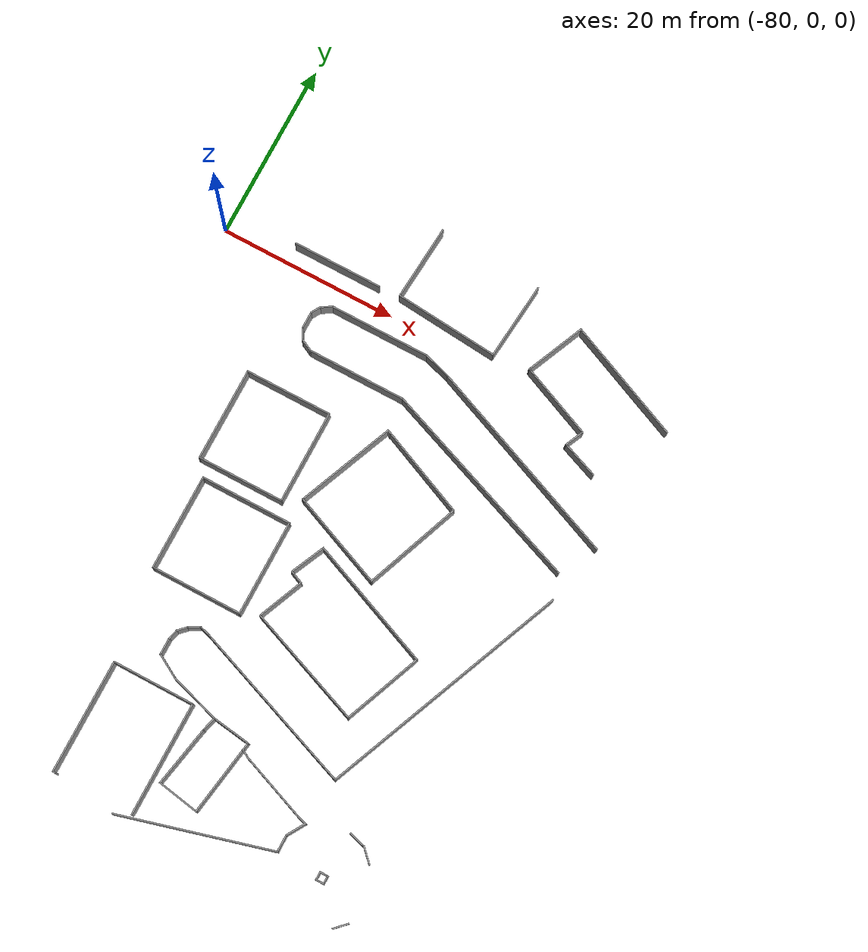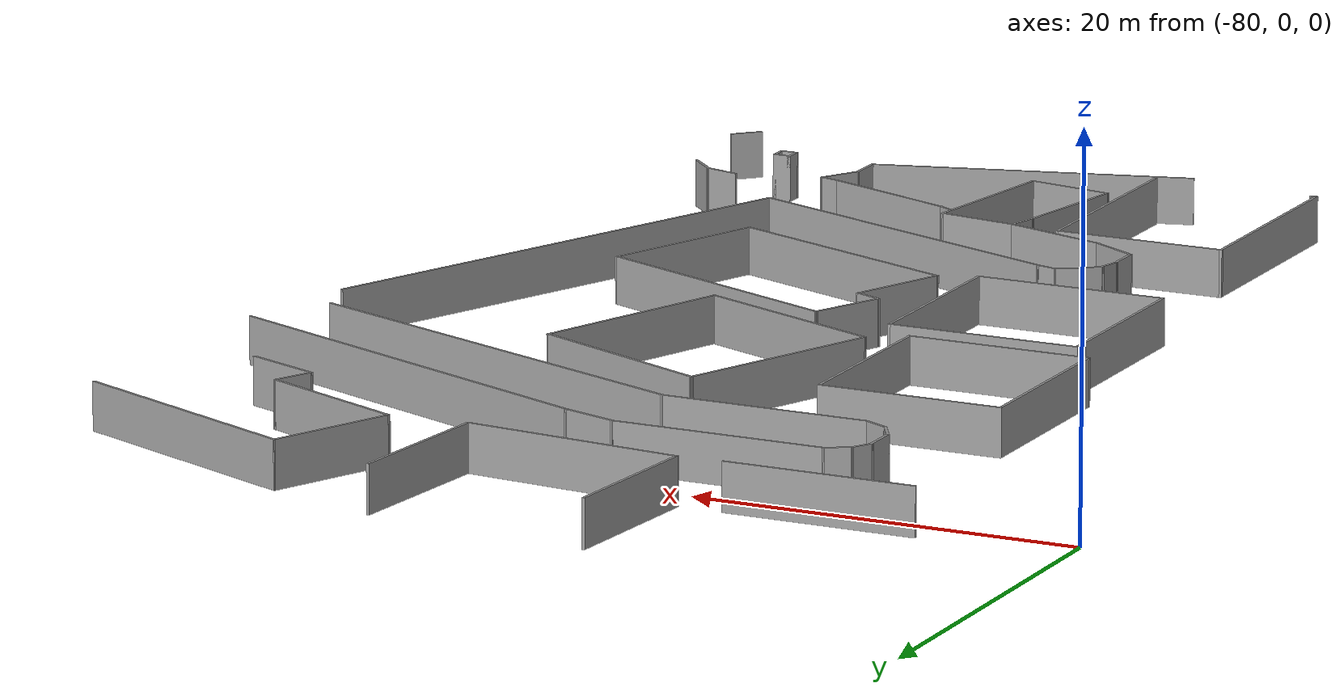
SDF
<sdf version="1.6">
 <model name="palazzo2">
  <pose>-3.81107 -3.99805 0 0 -0 0</pose>
  <link name="Wall_200">
   <collision name="Wall_200_Collision">
    <geometry><box><size>2 0.15 2.5</size></box></geometry>
    <pose>0 0 1.25 0 -0 0</pose>
   </collision>
   <visual name="Wall_200_Visual">
    <pose>0 0 1.25 0 -0 0</pose>
    <geometry><box><size>2 0.15 2.5</size></box></geometry>
    <material>
     <script><uri>file://media/materials/scripts/gazebo.material</uri><name>Gazebo/Grey</name></script>
     <ambient>1 1 1 1</ambient>
    </material>
    <meta><layer>0</layer></meta>
   </visual>
   <pose>-31.9778 -46.6973 0 0 -0 2.35619</pose>
  </link>
  <link name="Wall_201">
   <collision name="Wall_201_Collision">
    <geometry><box><size>2 0.15 2.5</size></box></geometry>
    <pose>0 0 1.25 0 -0 0</pose>
   </collision>
   <visual name="Wall_201_Visual">
    <pose>0 0 1.25 0 -0 0</pose>
    <geometry><box><size>2 0.15 2.5</size></box></geometry>
    <material>
     <script><uri>file://media/materials/scripts/gazebo.material</uri><name>Gazebo/Grey</name></script>
     <ambient>1 1 1 1</ambient>
    </material>
    <meta><layer>0</layer></meta>
   </visual>
   <pose>-33.5253 -45.8039 0 0 -0 2.87979</pose>
  </link>
  <link name="Wall_210">
   <collision name="Wall_210_Collision">
    <geometry><box><size>23.8446 0.15 2.5</size></box></geometry>
    <pose>0 0 1.25 0 -0 0</pose>
   </collision>
   <visual name="Wall_210_Visual">
    <pose>0 0 1.25 0 -0 0</pose>
    <geometry><box><size>23.8446 0.15 2.5</size></box></geometry>
    <material>
     <script><uri>file://media/materials/scripts/gazebo.material</uri><name>Gazebo/Grey</name></script>
     <ambient>1 1 1 1</ambient>
    </material>
    <meta><layer>0</layer></meta>
   </visual>
   <pose>-36.8641 -3.80844 0 0 -0 -0.384061</pose>
  </link>
  <link name="Wall_212">
   <collision name="Wall_212_Collision">
    <geometry><box><size>11.25 0.15 2.5</size></box></geometry>
    <pose>0 0 1.25 0 -0 0</pose>
   </collision>
   <visual name="Wall_212_Visual">
    <pose>0 0 1.25 0 -0 0</pose>
    <geometry><box><size>11.25 0.15 2.5</size></box></geometry>
    <material>
     <script><uri>file://media/materials/scripts/gazebo.material</uri><name>Gazebo/Grey</name></script>
     <ambient>1 1 1 1</ambient>
    </material>
    <meta><layer>0</layer></meta>
   </visual>
   <pose>-56.3223 1.54384 0 0 -0 0</pose>
  </link>
  <link name="Wall_213">
   <collision name="Wall_213_Collision">
    <geometry><box><size>3.21322 0.15 2.5</size></box></geometry>
    <pose>0 0 1.25 0 -0 0</pose>
   </collision>
   <visual name="Wall_213_Visual">
    <pose>0 0 1.25 0 -0 0</pose>
    <geometry><box><size>3.21322 0.15 2.5</size></box></geometry>
    <material>
     <script><uri>file://media/materials/scripts/gazebo.material</uri><name>Gazebo/Grey</name></script>
     <ambient>1 1 1 1</ambient>
    </material>
    <meta><layer>0</layer></meta>
   </visual>
   <pose>-49.3103 1.08723 0 0 -0 -0.302728</pose>
  </link>
  <link name="Wall_221">
   <collision name="Wall_221_Collision">
    <geometry><box><size>1.5 0.15 2.5</size></box></geometry>
    <pose>0 0 1.25 0 -0 0</pose>
   </collision>
   <visual name="Wall_221_Visual">
    <pose>0 0 1.25 0 -0 0</pose>
    <geometry><box><size>1.5 0.15 2.5</size></box></geometry>
    <material>
     <script><uri>file://media/materials/scripts/gazebo.material</uri><name>Gazebo/Grey</name></script>
     <ambient>1 1 1 1</ambient>
    </material>
    <meta><layer>0</layer></meta>
   </visual>
   <pose>-62.4568 1.20634 0 0 -0 -2.61799</pose>
  </link>
  <link name="Wall_222">
   <collision name="Wall_222_Collision">
    <geometry><box><size>1.25 0.15 2.5</size></box></geometry>
    <pose>0 0 1.25 0 -0 0</pose>
   </collision>
   <visual name="Wall_222_Visual">
    <pose>0 0 1.25 0 -0 0</pose>
    <geometry><box><size>1.25 0.15 2.5</size></box></geometry>
    <material>
     <script><uri>file://media/materials/scripts/gazebo.material</uri><name>Gazebo/Grey</name></script>
     <ambient>1 1 1 1</ambient>
    </material>
    <meta><layer>0</layer></meta>
   </visual>
   <pose>-63.3164 0.392527 0 0 -0 -2.0944</pose>
  </link>
  <link name="Wall_223">
   <collision name="Wall_223_Collision">
    <geometry><box><size>2 0.15 2.5</size></box></geometry>
    <pose>0 0 1.25 0 -0 0</pose>
   </collision>
   <visual name="Wall_223_Visual">
    <pose>0 0 1.25 0 -0 0</pose>
    <geometry><box><size>2 0.15 2.5</size></box></geometry>
    <material>
     <script><uri>file://media/materials/scripts/gazebo.material</uri><name>Gazebo/Grey</name></script>
     <ambient>1 1 1 1</ambient>
    </material>
    <meta><layer>0</layer></meta>
   </visual>
   <pose>-63.5914 -1.00879 0 0 -0 -1.5708</pose>
  </link>
  <link name="Wall_227">
   <collision name="Wall_227_Collision">
    <geometry><box><size>1.5 0.15 2.5</size></box></geometry>
    <pose>0 0 1.25 0 -0 0</pose>
   </collision>
   <visual name="Wall_227_Visual">
    <pose>0 0 1.25 0 -0 0</pose>
    <geometry><box><size>1.5 0.15 2.5</size></box></geometry>
    <material>
     <script><uri>file://media/materials/scripts/gazebo.material</uri><name>Gazebo/Grey</name></script>
     <ambient>1 1 1 1</ambient>
    </material>
    <meta><layer>0</layer></meta>
   </visual>
   <pose>-63.2539 -2.51835 0 0 -0 -1.0472</pose>
  </link>
  <link name="Wall_228">
   <collision name="Wall_228_Collision">
    <geometry><box><size>1.52358 0.15 2.5</size></box></geometry>
    <pose>0 0 1.25 0 -0 0</pose>
   </collision>
   <visual name="Wall_228_Visual">
    <pose>0 0 1.25 0 -0 0</pose>
    <geometry><box><size>1.52358 0.15 2.5</size></box></geometry>
    <material>
     <script><uri>file://media/materials/scripts/gazebo.material</uri><name>Gazebo/Grey</name></script>
     <ambient>1 1 1 1</ambient>
    </material>
    <meta><layer>0</layer></meta>
   </visual>
   <pose>-62.3007 -3.40717 0 0 -0 -0.458934</pose>
  </link>
  <link name="Wall_232">
   <collision name="Wall_232_Collision">
    <geometry><box><size>11 0.15 2.5</size></box></geometry>
    <pose>0 0 1.25 0 -0 0</pose>
   </collision>
   <visual name="Wall_232_Visual">
    <pose>0 0 1.25 0 -0 0</pose>
    <geometry><box><size>11 0.15 2.5</size></box></geometry>
    <material>
     <script><uri>file://media/materials/scripts/gazebo.material</uri><name>Gazebo/Grey</name></script>
     <ambient>1 1 1 1</ambient>
    </material>
    <meta><layer>0</layer></meta>
   </visual>
   <pose>-56.26 -3.71141 0 0 -0 0</pose>
  </link>
  <link name="Wall_234">
   <collision name="Wall_234_Collision">
    <geometry><box><size>24.3321 0.15 2.5</size></box></geometry>
    <pose>0 0 1.25 0 -0 0</pose>
   </collision>
   <visual name="Wall_234_Visual">
    <pose>0 0 1.25 0 -0 0</pose>
    <geometry><box><size>24.3321 0.15 2.5</size></box></geometry>
    <material>
     <script><uri>file://media/materials/scripts/gazebo.material</uri><name>Gazebo/Grey</name></script>
     <ambient>1 1 1 1</ambient>
    </material>
    <meta><layer>0</layer></meta>
   </visual>
   <pose>-39.5245 -7.98528 0 0 -0 -0.361282</pose>
  </link>
  <link name="Wall_241">
   <collision name="Wall_241_Collision">
    <geometry><box><size>28.8759 0.15 2.5</size></box></geometry>
    <pose>0 0 1.25 0 -0 0</pose>
   </collision>
   <visual name="Wall_241_Visual">
    <pose>0 0 1.25 0 -0 0</pose>
    <geometry><box><size>28.8759 0.15 2.5</size></box></geometry>
    <material>
     <script><uri>file://media/materials/scripts/gazebo.material</uri><name>Gazebo/Grey</name></script>
     <ambient>1 1 1 1</ambient>
    </material>
    <meta><layer>0</layer></meta>
   </visual>
   <pose>-32.8716 -28.2804 0 0 -0 1.18102</pose>
  </link>
  <link name="Wall_243">
   <collision name="Wall_243_Collision">
    <geometry><box><size>19.7546 0.15 2.5</size></box></geometry>
    <pose>0 0 1.25 0 -0 0</pose>
   </collision>
   <visual name="Wall_243_Visual">
    <pose>0 0 1.25 0 -0 0</pose>
    <geometry><box><size>19.7546 0.15 2.5</size></box></geometry>
    <material>
     <script><uri>file://media/materials/scripts/gazebo.material</uri><name>Gazebo/Grey</name></script>
     <ambient>1 1 1 1</ambient>
    </material>
    <meta><layer>0</layer></meta>
   </visual>
   <pose>-47.5143 -38.1426 0 0 -0 -0.356773</pose>
  </link>
  <link name="Wall_245">
   <collision name="Wall_245_Collision">
    <geometry><box><size>1.25 0.15 2.5</size></box></geometry>
    <pose>0 0 1.25 0 -0 0</pose>
   </collision>
   <visual name="Wall_245_Visual">
    <pose>0 0 1.25 0 -0 0</pose>
    <geometry><box><size>1.25 0.15 2.5</size></box></geometry>
    <material>
     <script><uri>file://media/materials/scripts/gazebo.material</uri><name>Gazebo/Grey</name></script>
     <ambient>1 1 1 1</ambient>
    </material>
    <meta><layer>0</layer></meta>
   </visual>
   <pose>-57.2306 -34.5768 0 0 -0 2.87979</pose>
  </link>
  <link name="Wall_246">
   <collision name="Wall_246_Collision">
    <geometry><box><size>1.5 0.15 2.5</size></box></geometry>
    <pose>0 0 1.25 0 -0 0</pose>
   </collision>
   <visual name="Wall_246_Visual">
    <pose>0 0 1.25 0 -0 0</pose>
    <geometry><box><size>1.5 0.15 2.5</size></box></geometry>
    <material>
     <script><uri>file://media/materials/scripts/gazebo.material</uri><name>Gazebo/Grey</name></script>
     <ambient>1 1 1 1</ambient>
    </material>
    <meta><layer>0</layer></meta>
   </visual>
   <pose>-58.3464 -34.7719 0 0 -0 -2.61799</pose>
  </link>
  <link name="Wall_247">
   <collision name="Wall_247_Collision">
    <geometry><box><size>1.25 0.15 2.5</size></box></geometry>
    <pose>0 0 1.25 0 -0 0</pose>
   </collision>
   <visual name="Wall_247_Visual">
    <pose>0 0 1.25 0 -0 0</pose>
    <geometry><box><size>1.25 0.15 2.5</size></box></geometry>
    <material>
     <script><uri>file://media/materials/scripts/gazebo.material</uri><name>Gazebo/Grey</name></script>
     <ambient>1 1 1 1</ambient>
    </material>
    <meta><layer>0</layer></meta>
   </visual>
   <pose>-59.3199 -35.4983 0 0 -0 -2.35619</pose>
  </link>
  <link name="Wall_250">
   <collision name="Wall_250_Collision">
    <geometry><box><size>1.25 0.15 2.5</size></box></geometry>
    <pose>0 0 1.25 0 -0 0</pose>
   </collision>
   <visual name="Wall_250_Visual">
    <pose>0 0 1.25 0 -0 0</pose>
    <geometry><box><size>1.25 0.15 2.5</size></box></geometry>
    <material>
     <script><uri>file://media/materials/scripts/gazebo.material</uri><name>Gazebo/Grey</name></script>
     <ambient>1 1 1 1</ambient>
    </material>
    <meta><layer>0</layer></meta>
   </visual>
   <pose>-59.8512 -36.4185 0 0 -0 -1.8326</pose>
  </link>
  <link name="Wall_251">
   <collision name="Wall_251_Collision">
    <geometry><box><size>2 0.15 2.5</size></box></geometry>
    <pose>0 0 1.25 0 -0 0</pose>
   </collision>
   <visual name="Wall_251_Visual">
    <pose>0 0 1.25 0 -0 0</pose>
    <geometry><box><size>2 0.15 2.5</size></box></geometry>
    <material>
     <script><uri>file://media/materials/scripts/gazebo.material</uri><name>Gazebo/Grey</name></script>
     <ambient>1 1 1 1</ambient>
    </material>
    <meta><layer>0</layer></meta>
   </visual>
   <pose>-59.9935 -37.8747 0 0 -0 -1.5708</pose>
  </link>
  <link name="Wall_252">
   <collision name="Wall_252_Collision">
    <geometry><box><size>3 0.15 2.5</size></box></geometry>
    <pose>0 0 1.25 0 -0 0</pose>
   </collision>
   <visual name="Wall_252_Visual">
    <pose>0 0 1.25 0 -0 0</pose>
    <geometry><box><size>3 0.15 2.5</size></box></geometry>
    <material>
     <script><uri>file://media/materials/scripts/gazebo.material</uri><name>Gazebo/Grey</name></script>
     <ambient>1 1 1 1</ambient>
    </material>
    <meta><layer>0</layer></meta>
   </visual>
   <pose>-58.7594 -39.5122 0 0 -0 -0.523599</pose>
  </link>
  <link name="Wall_254">
   <collision name="Wall_254_Collision">
    <geometry><box><size>1.19161 0.15 2.5</size></box></geometry>
    <pose>0 0 1.25 0 -0 0</pose>
   </collision>
   <visual name="Wall_254_Visual">
    <pose>0 0 1.25 0 -0 0</pose>
    <geometry><box><size>1.19161 0.15 2.5</size></box></geometry>
    <material>
     <script><uri>file://media/materials/scripts/gazebo.material</uri><name>Gazebo/Grey</name></script>
     <ambient>1 1 1 1</ambient>
    </material>
    <meta><layer>0</layer></meta>
   </visual>
   <pose>-39.3703 -46.6963 0 0 -0 2.86474</pose>
  </link>
  <link name="Wall_256">
   <collision name="Wall_256_Collision">
    <geometry><box><size>7.93505 0.15 2.5</size></box></geometry>
    <pose>0 0 1.25 0 -0 0</pose>
   </collision>
   <visual name="Wall_256_Visual">
    <pose>0 0 1.25 0 -0 0</pose>
    <geometry><box><size>7.93505 0.15 2.5</size></box></geometry>
    <material>
     <script><uri>file://media/materials/scripts/gazebo.material</uri><name>Gazebo/Grey</name></script>
     <ambient>1 1 1 1</ambient>
    </material>
    <meta><layer>0</layer></meta>
   </visual>
   <pose>-43.5083 -45.1668 0 0 -0 -0.364376</pose>
  </link>
  <link name="Wall_258">
   <collision name="Wall_258_Collision">
    <geometry><box><size>1.75 0.15 2.5</size></box></geometry>
    <pose>0 0 1.25 0 -0 0</pose>
   </collision>
   <visual name="Wall_258_Visual">
    <pose>0 0 1.25 0 -0 0</pose>
    <geometry><box><size>1.75 0.15 2.5</size></box></geometry>
    <material>
     <script><uri>file://media/materials/scripts/gazebo.material</uri><name>Gazebo/Grey</name></script>
     <ambient>1 1 1 1</ambient>
    </material>
    <meta><layer>0</layer></meta>
   </visual>
   <pose>-52.2267 -42.6875 0 0 -0 -1.8326</pose>
  </link>
  <link name="Wall_260">
   <collision name="Wall_260_Collision">
    <geometry><box><size>6.96814 0.15 2.5</size></box></geometry>
    <pose>0 0 1.25 0 -0 0</pose>
   </collision>
   <visual name="Wall_260_Visual">
    <pose>0 0 1.25 0 -0 0</pose>
    <geometry><box><size>6.96814 0.15 2.5</size></box></geometry>
    <material>
     <script><uri>file://media/materials/scripts/gazebo.material</uri><name>Gazebo/Grey</name></script>
     <ambient>1 1 1 1</ambient>
    </material>
    <meta><layer>0</layer></meta>
   </visual>
   <pose>-53.0694 -46.8095 0 0 -0 1.38325</pose>
  </link>
  <link name="Wall_262">
   <collision name="Wall_262_Collision">
    <geometry><box><size>4.78688 0.15 2.5</size></box></geometry>
    <pose>0 0 1.25 0 -0 0</pose>
   </collision>
   <visual name="Wall_262_Visual">
    <pose>0 0 1.25 0 -0 0</pose>
    <geometry><box><size>4.78688 0.15 2.5</size></box></geometry>
    <material>
     <script><uri>file://media/materials/scripts/gazebo.material</uri><name>Gazebo/Grey</name></script>
     <ambient>1 1 1 1</ambient>
    </material>
    <meta><layer>0</layer></meta>
   </visual>
   <pose>-51.4206 -50.5548 0 0 -0 2.96997</pose>
  </link>
  <link name="Wall_264">
   <collision name="Wall_264_Collision">
    <geometry><box><size>4.3943 0.15 2.5</size></box></geometry>
    <pose>0 0 1.25 0 -0 0</pose>
   </collision>
   <visual name="Wall_264_Visual">
    <pose>0 0 1.25 0 -0 0</pose>
    <geometry><box><size>4.3943 0.15 2.5</size></box></geometry>
    <material>
     <script><uri>file://media/materials/scripts/gazebo.material</uri><name>Gazebo/Grey</name></script>
     <ambient>1 1 1 1</ambient>
    </material>
    <meta><layer>0</layer></meta>
   </visual>
   <pose>-49.918 -42.2092 0 0 -0 3.0024</pose>
  </link>
  <link name="Wall_266">
   <collision name="Wall_266_Collision">
    <geometry><box><size>8.69961 0.15 2.5</size></box></geometry>
    <pose>0 0 1.25 0 -0 0</pose>
   </collision>
   <visual name="Wall_266_Visual">
    <pose>0 0 1.25 0 -0 0</pose>
    <geometry><box><size>8.69961 0.15 2.5</size></box></geometry>
    <material>
     <script><uri>file://media/materials/scripts/gazebo.material</uri><name>Gazebo/Grey</name></script>
     <ambient>1 1 1 1</ambient>
    </material>
    <meta><layer>0</layer></meta>
   </visual>
   <pose>-48.4763 -46.7272 0 0 -0 1.4158</pose>
  </link>
  <link name="Wall_268">
   <collision name="Wall_268_Collision">
    <geometry><box><size>1 0.15 2.5</size></box></geometry>
    <pose>0 0 1.25 0 -0 0</pose>
   </collision>
   <visual name="Wall_268_Visual">
    <pose>0 0 1.25 0 -0 0</pose>
    <geometry><box><size>1 0.15 2.5</size></box></geometry>
    <material>
     <script><uri>file://media/materials/scripts/gazebo.material</uri><name>Gazebo/Grey</name></script>
     <ambient>1 1 1 1</ambient>
    </material>
    <meta><layer>0</layer></meta>
   </visual>
   <pose>-47.5133 -43.5671 0 0 -0 2.61799</pose>
  </link>
  <link name="Wall_270">
   <collision name="Wall_270_Collision">
    <geometry><box><size>5.90924 0.15 2.5</size></box></geometry>
    <pose>0 0 1.25 0 -0 0</pose>
   </collision>
   <visual name="Wall_270_Visual">
    <pose>0 0 1.25 0 -0 0</pose>
    <geometry><box><size>5.90924 0.15 2.5</size></box></geometry>
    <material>
     <script><uri>file://media/materials/scripts/gazebo.material</uri><name>Gazebo/Grey</name></script>
     <ambient>1 1 1 1</ambient>
    </material>
    <meta><layer>0</layer></meta>
   </visual>
   <pose>-54.7725 -41.0697 0 0 -0 2.84377</pose>
  </link>
  <link name="Wall_276">
   <collision name="Wall_276_Collision">
    <geometry><box><size>2 0.15 2.5</size></box></geometry>
    <pose>0 0 1.25 0 -0 0</pose>
   </collision>
   <visual name="Wall_276_Visual">
    <pose>0 0 1.25 0 -0 0</pose>
    <geometry><box><size>2 0.15 2.5</size></box></geometry>
    <material>
     <script><uri>file://media/materials/scripts/gazebo.material</uri><name>Gazebo/Grey</name></script>
     <ambient>1 1 1 1</ambient>
    </material>
    <meta><layer>0</layer></meta>
   </visual>
   <pose>-40.0165 -49.6719 0 0 -0 1.5708</pose>
  </link>
  <link name="Wall_277">
   <collision name="Wall_277_Collision">
    <geometry><box><size>2.37653 0.15 2.5</size></box></geometry>
    <pose>0 0 1.25 0 -0 0</pose>
   </collision>
   <visual name="Wall_277_Visual">
    <pose>0 0 1.25 0 -0 0</pose>
    <geometry><box><size>2.37653 0.15 2.5</size></box></geometry>
    <material>
     <script><uri>file://media/materials/scripts/gazebo.material</uri><name>Gazebo/Grey</name></script>
     <ambient>1 1 1 1</ambient>
    </material>
    <meta><layer>0</layer></meta>
   </visual>
   <pose>-39.4429 -47.7928 0 0 -0 1.02951</pose>
  </link>
  <link name="Wall_279">
   <collision name="Wall_279_Collision">
    <geometry><box><size>17.1742 0.15 2.5</size></box></geometry>
    <pose>0 0 1.25 0 -0 0</pose>
   </collision>
   <visual name="Wall_279_Visual">
    <pose>0 0 1.25 0 -0 0</pose>
    <geometry><box><size>17.1742 0.15 2.5</size></box></geometry>
    <material>
     <script><uri>file://media/materials/scripts/gazebo.material</uri><name>Gazebo/Grey</name></script>
     <ambient>1 1 1 1</ambient>
    </material>
    <meta><layer>0</layer></meta>
   </visual>
   <pose>-48.2241 -52.8533 0 0 -0 0.26828</pose>
  </link>
  <link name="Wall_293">
   <collision name="Wall_293_Collision">
    <geometry><box><size>1.75 0.15 2.5</size></box></geometry>
    <pose>0 0 1.25 0 -0 0</pose>
   </collision>
   <visual name="Wall_293_Visual">
    <pose>0 0 1.25 0 -0 0</pose>
    <geometry><box><size>1.75 0.15 2.5</size></box></geometry>
    <material>
     <script><uri>file://media/materials/scripts/gazebo.material</uri><name>Gazebo/Grey</name></script>
     <ambient>1 1 1 1</ambient>
    </material>
    <meta><layer>0</layer></meta>
   </visual>
   <pose>-30.9697 -54.0775 0 0 -0 0.785398</pose>
  </link>
  <link name="Wall_634">
   <collision name="Wall_634_Collision">
    <geometry><box><size>10 0.15 2.5</size></box></geometry>
    <pose>0 0 1.25 0 -0 0</pose>
   </collision>
   <visual name="Wall_634_Visual">
    <pose>0 0 1.25 0 -0 0</pose>
    <geometry><box><size>10 0.15 2.5</size></box></geometry>
    <material>
     <script><uri>file://media/materials/scripts/gazebo.material</uri><name>Gazebo/Grey</name></script>
     <ambient>1 1 1 1</ambient>
    </material>
    <meta><layer>0</layer></meta>
   </visual>
   <pose>-63.6207 5.75211 0 0 -0 3.14159</pose>
  </link>
  <link name="Wall_642">
   <collision name="Wall_642_Collision">
    <geometry><box><size>8.5332 0.15 2.5</size></box></geometry>
    <pose>0 0 1.25 0 -0 0</pose>
   </collision>
   <visual name="Wall_642_Visual">
    <pose>0 0 1.25 0 -0 0</pose>
    <geometry><box><size>8.5332 0.15 2.5</size></box></geometry>
    <material>
     <script><uri>file://media/materials/scripts/gazebo.material</uri><name>Gazebo/Grey</name></script>
     <ambient>1 1 1 1</ambient>
    </material>
    <meta><layer>0</layer></meta>
   </visual>
   <pose>-55.9843 10.09 0 0 -0 1.49486</pose>
  </link>
  <link name="Wall_644">
   <collision name="Wall_644_Collision">
    <geometry><box><size>8.72982 0.15 2.5</size></box></geometry>
    <pose>0 0 1.25 0 -0 0</pose>
   </collision>
   <visual name="Wall_644_Visual">
    <pose>0 0 1.25 0 -0 0</pose>
    <geometry><box><size>8.72982 0.15 2.5</size></box></geometry>
    <material>
     <script><uri>file://media/materials/scripts/gazebo.material</uri><name>Gazebo/Grey</name></script>
     <ambient>1 1 1 1</ambient>
    </material>
    <meta><layer>0</layer></meta>
   </visual>
   <pose>-44.3543 9.15111 0 0 -0 1.47534</pose>
  </link>
  <link name="Wall_646">
   <collision name="Wall_646_Collision">
    <geometry><box><size>11.735 0.15 2.5</size></box></geometry>
    <pose>0 0 1.25 0 -0 0</pose>
   </collision>
   <visual name="Wall_646_Visual">
    <pose>0 0 1.25 0 -0 0</pose>
    <geometry><box><size>11.735 0.15 2.5</size></box></geometry>
    <material>
     <script><uri>file://media/materials/scripts/gazebo.material</uri><name>Gazebo/Grey</name></script>
     <ambient>1 1 1 1</ambient>
    </material>
    <meta><layer>0</layer></meta>
   </visual>
   <pose>-50.5328 5.3956 0 0 -0 -0.089003</pose>
  </link>
  <link name="Wall_651">
   <collision name="Wall_651_Collision">
    <geometry><box><size>14.1642 0.15 2.5</size></box></geometry>
    <pose>0 0 1.25 0 -0 0</pose>
   </collision>
   <visual name="Wall_651_Visual">
    <pose>0 0 1.25 0 -0 0</pose>
    <geometry><box><size>14.1642 0.15 2.5</size></box></geometry>
    <material>
     <script><uri>file://media/materials/scripts/gazebo.material</uri><name>Gazebo/Grey</name></script>
     <ambient>1 1 1 1</ambient>
    </material>
    <meta><layer>0</layer></meta>
   </visual>
   <pose>-31.5129 8.83311 0 0 -0 2.735</pose>
  </link>
  <link name="Wall_653">
   <collision name="Wall_653_Collision">
    <geometry><box><size>7.02607 0.15 2.5</size></box></geometry>
    <pose>0 0 1.25 0 -0 0</pose>
   </collision>
   <visual name="Wall_653_Visual">
    <pose>0 0 1.25 0 -0 0</pose>
    <geometry><box><size>7.02607 0.15 2.5</size></box></geometry>
    <material>
     <script><uri>file://media/materials/scripts/gazebo.material</uri><name>Gazebo/Grey</name></script>
     <ambient>1 1 1 1</ambient>
    </material>
    <meta><layer>0</layer></meta>
   </visual>
   <pose>-39.3268 8.45453 0 0 -0 1.15839</pose>
  </link>
  <link name="Wall_657">
   <collision name="Wall_657_Collision">
    <geometry><box><size>8.76779 0.15 2.5</size></box></geometry>
    <pose>0 0 1.25 0 -0 0</pose>
   </collision>
   <visual name="Wall_657_Visual">
    <pose>0 0 1.25 0 -0 0</pose>
    <geometry><box><size>8.76779 0.15 2.5</size></box></geometry>
    <material>
     <script><uri>file://media/materials/scripts/gazebo.material</uri><name>Gazebo/Grey</name></script>
     <ambient>1 1 1 1</ambient>
    </material>
    <meta><layer>0</layer></meta>
   </visual>
   <pose>-36.7373 3.62385 0 0 -0 2.74085</pose>
  </link>
  <link name="Wall_659">
   <collision name="Wall_659_Collision">
    <geometry><box><size>2.29071 0.15 2.5</size></box></geometry>
    <pose>0 0 1.25 0 -0 0</pose>
   </collision>
   <visual name="Wall_659_Visual">
    <pose>0 0 1.25 0 -0 0</pose>
    <geometry><box><size>2.29071 0.15 2.5</size></box></geometry>
    <material>
     <script><uri>file://media/materials/scripts/gazebo.material</uri><name>Gazebo/Grey</name></script>
     <ambient>1 1 1 1</ambient>
    </material>
    <meta><layer>0</layer></meta>
   </visual>
   <pose>-33.2241 0.973792 0 0 -0 1.13246</pose>
  </link>
  <link name="Wall_661">
   <collision name="Wall_661_Collision">
    <geometry><box><size>4.34015 0.15 2.5</size></box></geometry>
    <pose>0 0 1.25 0 -0 0</pose>
   </collision>
   <visual name="Wall_661_Visual">
    <pose>0 0 1.25 0 -0 0</pose>
    <geometry><box><size>4.34015 0.15 2.5</size></box></geometry>
    <material>
     <script><uri>file://media/materials/scripts/gazebo.material</uri><name>Gazebo/Grey</name></script>
     <ambient>1 1 1 1</ambient>
    </material>
    <meta><layer>0</layer></meta>
   </visual>
   <pose>-31.7249 -0.752531 0 0 -0 2.77182</pose>
  </link>
  <link name="Wall_669">
   <collision name="Wall_669_Collision">
    <geometry><box><size>10.5 0.15 2.5</size></box></geometry>
    <pose>0 0 1.25 0 -0 0</pose>
   </collision>
   <visual name="Wall_669_Visual">
    <pose>0 0 1.25 0 -0 0</pose>
    <geometry><box><size>10.5 0.15 2.5</size></box></geometry>
    <material>
     <script><uri>file://media/materials/scripts/gazebo.material</uri><name>Gazebo/Grey</name></script>
     <ambient>1 1 1 1</ambient>
    </material>
    <meta><layer>0</layer></meta>
   </visual>
   <pose>-56.7831 -13.8977 0 0 -0 -1.5708</pose>
  </link>
  <link name="Wall_670">
   <collision name="Wall_670_Collision">
    <geometry><box><size>9.75 0.15 2.5</size></box></geometry>
    <pose>0 0 1.25 0 -0 0</pose>
   </collision>
   <visual name="Wall_670_Visual">
    <pose>0 0 1.25 0 -0 0</pose>
    <geometry><box><size>9.75 0.15 2.5</size></box></geometry>
    <material>
     <script><uri>file://media/materials/scripts/gazebo.material</uri><name>Gazebo/Grey</name></script>
     <ambient>1 1 1 1</ambient>
    </material>
    <meta><layer>0</layer></meta>
   </visual>
   <pose>-61.5831 -19.0727 0 0 -0 3.14159</pose>
  </link>
  <link name="Wall_671">
   <collision name="Wall_671_Collision">
    <geometry><box><size>10.5 0.15 2.5</size></box></geometry>
    <pose>0 0 1.25 0 -0 0</pose>
   </collision>
   <visual name="Wall_671_Visual">
    <pose>0 0 1.25 0 -0 0</pose>
    <geometry><box><size>10.5 0.15 2.5</size></box></geometry>
    <material>
     <script><uri>file://media/materials/scripts/gazebo.material</uri><name>Gazebo/Grey</name></script>
     <ambient>1 1 1 1</ambient>
    </material>
    <meta><layer>0</layer></meta>
   </visual>
   <pose>-66.3831 -13.8977 0 0 -0 1.5708</pose>
  </link>
  <link name="Wall_673">
   <collision name="Wall_673_Collision">
    <geometry><box><size>9.75 0.15 2.5</size></box></geometry>
    <pose>0 0 1.25 0 -0 0</pose>
   </collision>
   <visual name="Wall_673_Visual">
    <pose>0 0 1.25 0 -0 0</pose>
    <geometry><box><size>9.75 0.15 2.5</size></box></geometry>
    <material>
     <script><uri>file://media/materials/scripts/gazebo.material</uri><name>Gazebo/Grey</name></script>
     <ambient>1 1 1 1</ambient>
    </material>
    <meta><layer>0</layer></meta>
   </visual>
   <pose>-61.5831 -8.72266 0 0 -0 0</pose>
  </link>
  <link name="Wall_675">
   <collision name="Wall_675_Collision">
    <geometry><box><size>10.5 0.15 2.5</size></box></geometry>
    <pose>0 0 1.25 0 -0 0</pose>
   </collision>
   <visual name="Wall_675_Visual">
    <pose>0 0 1.25 0 -0 0</pose>
    <geometry><box><size>10.5 0.15 2.5</size></box></geometry>
    <material>
     <script><uri>file://media/materials/scripts/gazebo.material</uri><name>Gazebo/Grey</name></script>
     <ambient>1 1 1 1</ambient>
    </material>
    <meta><layer>0</layer></meta>
   </visual>
   <pose>-65.0309 -26.1576 0 0 -0 -1.5708</pose>
  </link>
  <link name="Wall_676">
   <collision name="Wall_676_Collision">
    <geometry><box><size>10.25 0.15 2.5</size></box></geometry>
    <pose>0 0 1.25 0 -0 0</pose>
   </collision>
   <visual name="Wall_676_Visual">
    <pose>0 0 1.25 0 -0 0</pose>
    <geometry><box><size>10.25 0.15 2.5</size></box></geometry>
    <material>
     <script><uri>file://media/materials/scripts/gazebo.material</uri><name>Gazebo/Grey</name></script>
     <ambient>1 1 1 1</ambient>
    </material>
    <meta><layer>0</layer></meta>
   </visual>
   <pose>-59.9809 -31.3326 0 0 -0 0</pose>
  </link>
  <link name="Wall_677">
   <collision name="Wall_677_Collision">
    <geometry><box><size>10.75 0.15 2.5</size></box></geometry>
    <pose>0 0 1.25 0 -0 0</pose>
   </collision>
   <visual name="Wall_677_Visual">
    <pose>0 0 1.25 0 -0 0</pose>
    <geometry><box><size>10.75 0.15 2.5</size></box></geometry>
    <material>
     <script><uri>file://media/materials/scripts/gazebo.material</uri><name>Gazebo/Grey</name></script>
     <ambient>1 1 1 1</ambient>
    </material>
    <meta><layer>0</layer></meta>
   </visual>
   <pose>-54.9309 -26.0326 0 0 -0 1.5708</pose>
  </link>
  <link name="Wall_678">
   <collision name="Wall_678_Collision">
    <geometry><box><size>10.25 0.15 2.5</size></box></geometry>
    <pose>0 0 1.25 0 -0 0</pose>
   </collision>
   <visual name="Wall_678_Visual">
    <pose>0 0 1.25 0 -0 0</pose>
    <geometry><box><size>10.25 0.15 2.5</size></box></geometry>
    <material>
     <script><uri>file://media/materials/scripts/gazebo.material</uri><name>Gazebo/Grey</name></script>
     <ambient>1 1 1 1</ambient>
    </material>
    <meta><layer>0</layer></meta>
   </visual>
   <pose>-59.9809 -20.7326 0 0 -0 3.14159</pose>
  </link>
  <link name="Wall_679">
   <collision name="Wall_679_Collision">
    <geometry><box><size>1 0.15 2.5</size></box></geometry>
    <pose>0 0 1.25 0 -0 0</pose>
   </collision>
   <visual name="Wall_679_Visual">
    <pose>0 0 1.25 0 -0 0</pose>
    <geometry><box><size>1 0.15 2.5</size></box></geometry>
    <material>
     <script><uri>file://media/materials/scripts/gazebo.material</uri><name>Gazebo/Grey</name></script>
     <ambient>1 1 1 1</ambient>
    </material>
    <meta><layer>0</layer></meta>
   </visual>
   <pose>-65.0309 -21.1576 0 0 -0 -1.5708</pose>
  </link>
  <link name="Wall_681">
   <collision name="Wall_681_Collision">
    <geometry><box><size>0.25 0.15 2.5</size></box></geometry>
    <pose>0 0 1.25 0 -0 0</pose>
   </collision>
   <visual name="Wall_681_Visual">
    <pose>0 0 1.25 0 -0 0</pose>
    <geometry><box><size>0.25 0.15 2.5</size></box></geometry>
    <material>
     <script><uri>file://media/materials/scripts/gazebo.material</uri><name>Gazebo/Grey</name></script>
     <ambient>1 1 1 1</ambient>
    </material>
    <meta><layer>0</layer></meta>
   </visual>
   <pose>-50.5762 -21.4011 0 0 -0 -0.785398</pose>
  </link>
  <link name="Wall_683">
   <collision name="Wall_683_Collision">
    <geometry><box><size>4.17109 0.15 2.5</size></box></geometry>
    <pose>0 0 1.25 0 -0 0</pose>
   </collision>
   <visual name="Wall_683_Visual">
    <pose>0 0 1.25 0 -0 0</pose>
    <geometry><box><size>4.17109 0.15 2.5</size></box></geometry>
    <material>
     <script><uri>file://media/materials/scripts/gazebo.material</uri><name>Gazebo/Grey</name></script>
     <ambient>1 1 1 1</ambient>
    </material>
    <meta><layer>0</layer></meta>
   </visual>
   <pose>-51.4475 -23.1942 0 0 -0 1.14202</pose>
  </link>
  <link name="Wall_685">
   <collision name="Wall_685_Collision">
    <geometry><box><size>1.63178 0.15 2.5</size></box></geometry>
    <pose>0 0 1.25 0 -0 0</pose>
   </collision>
   <visual name="Wall_685_Visual">
    <pose>0 0 1.25 0 -0 0</pose>
    <geometry><box><size>1.63178 0.15 2.5</size></box></geometry>
    <material>
     <script><uri>file://media/materials/scripts/gazebo.material</uri><name>Gazebo/Grey</name></script>
     <ambient>1 1 1 1</ambient>
    </material>
    <meta><layer>0</layer></meta>
   </visual>
   <pose>-51.6042 -25.3188 0 0 -0 2.73053</pose>
  </link>
  <link name="Wall_687">
   <collision name="Wall_687_Collision">
    <geometry><box><size>5.47354 0.15 2.5</size></box></geometry>
    <pose>0 0 1.25 0 -0 0</pose>
   </collision>
   <visual name="Wall_687_Visual">
    <pose>0 0 1.25 0 -0 0</pose>
    <geometry><box><size>5.47354 0.15 2.5</size></box></geometry>
    <material>
     <script><uri>file://media/materials/scripts/gazebo.material</uri><name>Gazebo/Grey</name></script>
     <ambient>1 1 1 1</ambient>
    </material>
    <meta><layer>0</layer></meta>
   </visual>
   <pose>-51.9525 -28.0704 0 0 -0 1.1745</pose>
  </link>
  <link name="Wall_689">
   <collision name="Wall_689_Collision">
    <geometry><box><size>15.071 0.15 2.5</size></box></geometry>
    <pose>0 0 1.25 0 -0 0</pose>
   </collision>
   <visual name="Wall_689_Visual">
    <pose>0 0 1.25 0 -0 0</pose>
    <geometry><box><size>15.071 0.15 2.5</size></box></geometry>
    <material>
     <script><uri>file://media/materials/scripts/gazebo.material</uri><name>Gazebo/Grey</name></script>
     <ambient>1 1 1 1</ambient>
    </material>
    <meta><layer>0</layer></meta>
   </visual>
   <pose>-43.6979 -24.1695 0 0 -0 2.75632</pose>
  </link>
  <link name="Wall_691">
   <collision name="Wall_691_Collision">
    <geometry><box><size>9.25006 0.15 2.5</size></box></geometry>
    <pose>0 0 1.25 0 -0 0</pose>
   </collision>
   <visual name="Wall_691_Visual">
    <pose>0 0 1.25 0 -0 0</pose>
    <geometry><box><size>9.25006 0.15 2.5</size></box></geometry>
    <material>
     <script><uri>file://media/materials/scripts/gazebo.material</uri><name>Gazebo/Grey</name></script>
     <ambient>1 1 1 1</ambient>
    </material>
    <meta><layer>0</layer></meta>
   </visual>
   <pose>-38.4561 -31.205 0 0 -0 1.19455</pose>
  </link>
  <link name="Wall_693">
   <collision name="Wall_693_Collision">
    <geometry><box><size>13.9083 0.15 2.5</size></box></geometry>
    <pose>0 0 1.25 0 -0 0</pose>
   </collision>
   <visual name="Wall_693_Visual">
    <pose>0 0 1.25 0 -0 0</pose>
    <geometry><box><size>13.9083 0.15 2.5</size></box></geometry>
    <material>
     <script><uri>file://media/materials/scripts/gazebo.material</uri><name>Gazebo/Grey</name></script>
     <ambient>1 1 1 1</ambient>
    </material>
    <meta><layer>0</layer></meta>
   </visual>
   <pose>-46.554 -32.9813 0 0 -0 -0.364993</pose>
  </link>
  <link name="Wall_695">
   <collision name="Wall_695_Collision">
    <geometry><box><size>0.5 0.15 2.5</size></box></geometry>
    <pose>0 0 1.25 0 -0 0</pose>
   </collision>
   <visual name="Wall_695_Visual">
    <pose>0 0 1.25 0 -0 0</pose>
    <geometry><box><size>0.5 0.15 2.5</size></box></geometry>
    <material>
     <script><uri>file://media/materials/scripts/gazebo.material</uri><name>Gazebo/Grey</name></script>
     <ambient>1 1 1 1</ambient>
    </material>
    <meta><layer>0</layer></meta>
   </visual>
   <pose>-50.4252 -7.45181 0 0 -0 -0.523599</pose>
  </link>
  <link name="Wall_697">
   <collision name="Wall_697_Collision">
    <geometry><box><size>10.9156 0.15 2.5</size></box></geometry>
    <pose>0 0 1.25 0 -0 0</pose>
   </collision>
   <visual name="Wall_697_Visual">
    <pose>0 0 1.25 0 -0 0</pose>
    <geometry><box><size>10.9156 0.15 2.5</size></box></geometry>
    <material>
     <script><uri>file://media/materials/scripts/gazebo.material</uri><name>Gazebo/Grey</name></script>
     <ambient>1 1 1 1</ambient>
    </material>
    <meta><layer>0</layer></meta>
   </visual>
   <pose>-45.631 -9.4889 0 0 -0 2.73585</pose>
  </link>
  <link name="Wall_699">
   <collision name="Wall_699_Collision">
    <geometry><box><size>11.3278 0.15 2.5</size></box></geometry>
    <pose>0 0 1.25 0 -0 0</pose>
   </collision>
   <visual name="Wall_699_Visual">
    <pose>0 0 1.25 0 -0 0</pose>
    <geometry><box><size>11.3278 0.15 2.5</size></box></geometry>
    <material>
     <script><uri>file://media/materials/scripts/gazebo.material</uri><name>Gazebo/Grey</name></script>
     <ambient>1 1 1 1</ambient>
    </material>
    <meta><layer>0</layer></meta>
   </visual>
   <pose>-42.6705 -16.8379 0 0 -0 1.20765</pose>
  </link>
  <link name="Wall_701">
   <collision name="Wall_701_Collision">
    <geometry><box><size>11.5206 0.15 2.5</size></box></geometry>
    <pose>0 0 1.25 0 -0 0</pose>
   </collision>
   <visual name="Wall_701_Visual">
    <pose>0 0 1.25 0 -0 0</pose>
    <geometry><box><size>11.5206 0.15 2.5</size></box></geometry>
    <material>
     <script><uri>file://media/materials/scripts/gazebo.material</uri><name>Gazebo/Grey</name></script>
     <ambient>1 1 1 1</ambient>
    </material>
    <meta><layer>0</layer></meta>
   </visual>
   <pose>-52.7362 -12.6235 0 0 -0 1.18119</pose>
  </link>
  <link name="Wall_703">
   <collision name="Wall_703_Collision">
    <geometry><box><size>11.2099 0.15 2.5</size></box></geometry>
    <pose>0 0 1.25 0 -0 0</pose>
   </collision>
   <visual name="Wall_703_Visual">
    <pose>0 0 1.25 0 -0 0</pose>
    <geometry><box><size>11.2099 0.15 2.5</size></box></geometry>
    <material>
     <script><uri>file://media/materials/scripts/gazebo.material</uri><name>Gazebo/Grey</name></script>
     <ambient>1 1 1 1</ambient>
    </material>
    <meta><layer>0</layer></meta>
   </visual>
   <pose>-49.7757 -19.9725 0 0 -0 2.75407</pose>
  </link>
  <link name="Wall_705">
   <collision name="Wall_705_Collision">
    <geometry><box><size>9.25 0.15 2.5</size></box></geometry>
    <pose>0 0 1.25 0 -0 0</pose>
   </collision>
   <visual name="Wall_705_Visual">
    <pose>0 0 1.25 0 -0 0</pose>
    <geometry><box><size>9.25 0.15 2.5</size></box></geometry>
    <material>
     <script><uri>file://media/materials/scripts/gazebo.material</uri><name>Gazebo/Grey</name></script>
     <ambient>1 1 1 1</ambient>
    </material>
    <meta><layer>0</layer></meta>
   </visual>
   <pose>-59.2184 -41.6814 0 0 -0 0</pose>
  </link>
  <link name="Wall_706">
   <collision name="Wall_706_Collision">
    <geometry><box><size>12.75 0.15 2.5</size></box></geometry>
    <pose>0 0 1.25 0 -0 0</pose>
   </collision>
   <visual name="Wall_706_Visual">
    <pose>0 0 1.25 0 -0 0</pose>
    <geometry><box><size>12.75 0.15 2.5</size></box></geometry>
    <material>
     <script><uri>file://media/materials/scripts/gazebo.material</uri><name>Gazebo/Grey</name></script>
     <ambient>1 1 1 1</ambient>
    </material>
    <meta><layer>0</layer></meta>
   </visual>
   <pose>-54.6684 -47.9813 0 0 -0 -1.5708</pose>
  </link>
  <link name="Wall_708">
   <collision name="Wall_708_Collision">
    <geometry><box><size>0.15 0.15 2.5</size></box></geometry>
    <pose>0 0 1.25 0 -0 0</pose>
   </collision>
   <visual name="Wall_708_Visual">
    <pose>0 0 1.25 0 -0 0</pose>
    <geometry><box><size>0.15 0.15 2.5</size></box></geometry>
    <material>
     <script><uri>file://media/materials/scripts/gazebo.material</uri><name>Gazebo/Grey</name></script>
     <ambient>1 1 1 1</ambient>
    </material>
    <meta><layer>0</layer></meta>
   </visual>
   <pose>-63.5184 -54.2813 0 0 -0 0</pose>
  </link>
  <link name="Wall_710">
   <collision name="Wall_710_Collision">
    <geometry><box><size>12.75 0.15 2.5</size></box></geometry>
    <pose>0 0 1.25 0 -0 0</pose>
   </collision>
   <visual name="Wall_710_Visual">
    <pose>0 0 1.25 0 -0 0</pose>
    <geometry><box><size>12.75 0.15 2.5</size></box></geometry>
    <material>
     <script><uri>file://media/materials/scripts/gazebo.material</uri><name>Gazebo/Grey</name></script>
     <ambient>1 1 1 1</ambient>
    </material>
    <meta><layer>0</layer></meta>
   </visual>
   <pose>-63.7684 -47.9813 0 0 -0 -1.5708</pose>
  </link>
  <link name="Wall_711">
   <collision name="Wall_711_Collision">
    <geometry><box><size>0.4 0.15 2.5</size></box></geometry>
    <pose>0 0 1.25 0 -0 0</pose>
   </collision>
   <visual name="Wall_711_Visual">
    <pose>0 0 1.25 0 -0 0</pose>
    <geometry><box><size>0.4 0.15 2.5</size></box></geometry>
    <material>
     <script><uri>file://media/materials/scripts/gazebo.material</uri><name>Gazebo/Grey</name></script>
     <ambient>1 1 1 1</ambient>
    </material>
    <meta><layer>0</layer></meta>
   </visual>
   <pose>-63.6434 -54.2813 0 0 -0 0</pose>
  </link>
  <link name="Wall_781">
   <collision name="Wall_781_Collision">
    <geometry><box><size>1 0.15 2.5</size></box></geometry>
    <pose>0 0 1.25 0 -0 0</pose>
   </collision>
   <visual name="Wall_781_Visual">
    <pose>0 0 1.25 0 -0 0</pose>
    <geometry><box><size>1 0.15 2.5</size></box></geometry>
    <material>
     <script><uri>file://media/materials/scripts/gazebo.material</uri><name>Gazebo/Grey</name></script>
     <ambient>1 1 1 1</ambient>
    </material>
    <meta><layer>0</layer></meta>
   </visual>
   <pose>-34.8579 -50.3491 0 0 -0 0</pose>
  </link>
  <link name="Wall_782">
   <collision name="Wall_782_Collision">
    <geometry><box><size>1 0.15 2.5</size></box></geometry>
    <pose>0 0 1.25 0 -0 0</pose>
   </collision>
   <visual name="Wall_782_Visual">
    <pose>0 0 1.25 0 -0 0</pose>
    <geometry><box><size>1 0.15 2.5</size></box></geometry>
    <material>
     <script><uri>file://media/materials/scripts/gazebo.material</uri><name>Gazebo/Grey</name></script>
     <ambient>1 1 1 1</ambient>
    </material>
    <meta><layer>0</layer></meta>
   </visual>
   <pose>-34.4329 -50.7741 0 0 -0 -1.5708</pose>
  </link>
  <link name="Wall_783">
   <collision name="Wall_783_Collision">
    <geometry><box><size>1 0.15 2.5</size></box></geometry>
    <pose>0 0 1.25 0 -0 0</pose>
   </collision>
   <visual name="Wall_783_Visual">
    <pose>0 0 1.25 0 -0 0</pose>
    <geometry><box><size>1 0.15 2.5</size></box></geometry>
    <material>
     <script><uri>file://media/materials/scripts/gazebo.material</uri><name>Gazebo/Grey</name></script>
     <ambient>1 1 1 1</ambient>
    </material>
    <meta><layer>0</layer></meta>
   </visual>
   <pose>-34.8579 -51.1991 0 0 -0 3.14159</pose>
  </link>
  <link name="Wall_784">
   <collision name="Wall_784_Collision">
    <geometry><box><size>1 0.15 2.5</size></box></geometry>
    <pose>0 0 1.25 0 -0 0</pose>
   </collision>
   <visual name="Wall_784_Visual">
    <pose>0 0 1.25 0 -0 0</pose>
    <geometry><box><size>1 0.15 2.5</size></box></geometry>
    <material>
     <script><uri>file://media/materials/scripts/gazebo.material</uri><name>Gazebo/Grey</name></script>
     <ambient>1 1 1 1</ambient>
    </material>
    <meta><layer>0</layer></meta>
   </visual>
   <pose>-35.2829 -50.7741 0 0 -0 1.5708</pose>
  </link>
  <static>1</static>
 </model>
</sdf>
